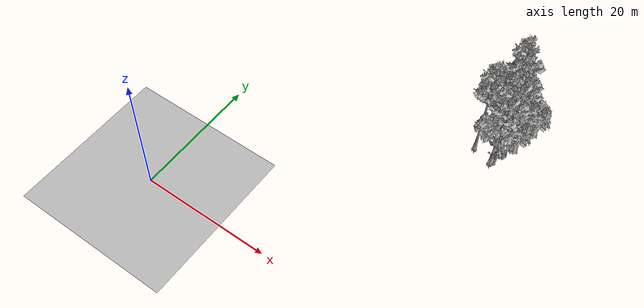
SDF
<sdf version="1.7">
 <world name="default">
  <model name="ground_plane">
   <static>1</static>
   <link name="link">
    <collision name="collision">
     <pose>-50 0 0 0 -0 0</pose>
     <geometry><plane><normal>0 0 1</normal><size>80 80</size></plane></geometry>
     <surface><contact><ode><min_depth>0.01</min_depth><max_vel>0</max_vel></ode></contact></surface>
    </collision>
    <visual name="grass">
     <cast_shadows>0</cast_shadows>
     <geometry>
      <mesh>
       <scale>0.46714285714285714 0.46714285714285714 0.1</scale>
       <uri>file://grass_plane/meshes/grass_plane.dae</uri>
      </mesh>
     </geometry>
    </visual>
   </link>
  </model>
  <model name="Tree 26">
   <static>1</static>
   <pose>34.21662054495896 32.584082411392984 0 1.57079 -0 0</pose>
   <link name="link">
    <collision name="collision">
     <geometry><mesh><scale>3.5 5 3.5</scale><uri>model://tree_9/meshes/tree_9.obj</uri></mesh></geometry>
    </collision>
    <visual name="visual">
     <geometry><mesh><scale>3.5 5 3.5</scale><uri>model://tree_9/meshes/tree_9.obj</uri></mesh></geometry>
    </visual>
   </link>
  </model>
  <model name="Tree 56">
   <static>1</static>
   <pose>37.29416292830753 31.454565409958576 0 1.57079 -0 0</pose>
   <link name="link">
    <collision name="collision">
     <geometry><mesh><scale>3.5 5 3.5</scale><uri>model://tree_9/meshes/tree_9.obj</uri></mesh></geometry>
    </collision>
    <visual name="visual">
     <geometry><mesh><scale>3.5 5 3.5</scale><uri>model://tree_9/meshes/tree_9.obj</uri></mesh></geometry>
    </visual>
   </link>
  </model>
  <model name="Tree 114">
   <static>1</static>
   <pose>37.45187303014529 34.57155741378821 0 1.57079 -0 0</pose>
   <link name="link">
    <collision name="collision">
     <geometry><mesh><scale>3.5 5 3.5</scale><uri>model://tree_9/meshes/tree_9.obj</uri></mesh></geometry>
    </collision>
    <visual name="visual">
     <geometry><mesh><scale>3.5 5 3.5</scale><uri>model://tree_9/meshes/tree_9.obj</uri></mesh></geometry>
    </visual>
   </link>
  </model>
  <model name="Tree 116">
   <static>1</static>
   <pose>36.72497949717517 36.11069970748707 0 1.57079 -0 0</pose>
   <link name="link">
    <collision name="collision">
     <geometry><mesh><scale>3.5 5 3.5</scale><uri>model://tree_9/meshes/tree_9.obj</uri></mesh></geometry>
    </collision>
    <visual name="visual">
     <geometry><mesh><scale>3.5 5 3.5</scale><uri>model://tree_9/meshes/tree_9.obj</uri></mesh></geometry>
    </visual>
   </link>
  </model>
  <model name="Tree 178">
   <static>1</static>
   <pose>35.45052163724718 39.35358244286324 0 1.57079 -0 0</pose>
   <link name="link">
    <collision name="collision">
     <geometry><mesh><scale>3.5 5 3.5</scale><uri>model://tree_9/meshes/tree_9.obj</uri></mesh></geometry>
    </collision>
    <visual name="visual">
     <geometry><mesh><scale>3.5 5 3.5</scale><uri>model://tree_9/meshes/tree_9.obj</uri></mesh></geometry>
    </visual>
   </link>
  </model>
  <model name="Tree 222">
   <static>1</static>
   <pose>38.71696142367813 35.54742916803423 0 1.57079 -0 0</pose>
   <link name="link">
    <collision name="collision">
     <geometry><mesh><scale>3.5 5 3.5</scale><uri>model://tree_2/meshes/tree_2.obj</uri></mesh></geometry>
    </collision>
    <visual name="visual">
     <geometry><mesh><scale>3.5 5 3.5</scale><uri>model://tree_2/meshes/tree_2.obj</uri></mesh></geometry>
    </visual>
   </link>
  </model>
  <model name="Tree 460">
   <static>1</static>
   <pose>37.78492632336091 31.488731695255908 0 1.57079 -0 0</pose>
   <link name="link">
    <collision name="collision">
     <geometry><mesh><scale>3.5 5 3.5</scale><uri>model://tree_2/meshes/tree_2.obj</uri></mesh></geometry>
    </collision>
    <visual name="visual">
     <geometry><mesh><scale>3.5 5 3.5</scale><uri>model://tree_2/meshes/tree_2.obj</uri></mesh></geometry>
    </visual>
   </link>
  </model>
  <model name="Tree 540">
   <static>1</static>
   <pose>34.72149133983771 38.04128791773192 0 1.57079 -0 0</pose>
   <link name="link">
    <collision name="collision">
     <geometry><mesh><scale>3.5 5 3.5</scale><uri>model://tree_2/meshes/tree_2.obj</uri></mesh></geometry>
    </collision>
    <visual name="visual">
     <geometry><mesh><scale>3.5 5 3.5</scale><uri>model://tree_2/meshes/tree_2.obj</uri></mesh></geometry>
    </visual>
   </link>
  </model>
  <model name="Bush 17">
   <static>1</static>
   <pose>35.77939274078972 37.34654555764786 0 1.57079 -0 0</pose>
   <link name="link">
    <collision name="collision">
     <geometry><mesh><scale>2 2 2</scale><uri>model://bush_4/meshes/bush_4.obj</uri></mesh></geometry>
     <surface><contact><collide_without_contact>false</collide_without_contact></contact></surface>
    </collision>
    <visual name="visual">
     <geometry><mesh><scale>2 2 2</scale><uri>model://bush_4/meshes/bush_4.obj</uri></mesh></geometry>
    </visual>
   </link>
  </model>
  <model name="Bush 163">
   <static>1</static>
   <pose>36.90912304758584 38.19655928473834 0 1.57079 -0 0</pose>
   <link name="link">
    <collision name="collision">
     <geometry><mesh><scale>2 2 2</scale><uri>model://bush_1/meshes/bush_1.obj</uri></mesh></geometry>
     <surface><contact><collide_without_contact>false</collide_without_contact></contact></surface>
    </collision>
    <visual name="visual">
     <geometry><mesh><scale>2 2 2</scale><uri>model://bush_1/meshes/bush_1.obj</uri></mesh></geometry>
    </visual>
   </link>
  </model>
  <model name="Bush 171">
   <static>1</static>
   <pose>35.896162753418366 38.742916186022626 0 1.57079 -0 0</pose>
   <link name="link">
    <collision name="collision">
     <geometry><mesh><scale>2 2 2</scale><uri>model://bush_2/meshes/bush_2.obj</uri></mesh></geometry>
     <surface><contact><collide_without_contact>false</collide_without_contact></contact></surface>
    </collision>
    <visual name="visual">
     <geometry><mesh><scale>2 2 2</scale><uri>model://bush_2/meshes/bush_2.obj</uri></mesh></geometry>
    </visual>
   </link>
  </model>
  <model name="Bush 628">
   <static>1</static>
   <pose>37.13517890457247 32.34149095227386 0 1.57079 -0 0</pose>
   <link name="link">
    <collision name="collision">
     <geometry><mesh><scale>2 2 2</scale><uri>model://bush_4/meshes/bush_4.obj</uri></mesh></geometry>
     <surface><contact><collide_without_contact>false</collide_without_contact></contact></surface>
    </collision>
    <visual name="visual">
     <geometry><mesh><scale>2 2 2</scale><uri>model://bush_4/meshes/bush_4.obj</uri></mesh></geometry>
    </visual>
   </link>
  </model>
 </world>
</sdf>
